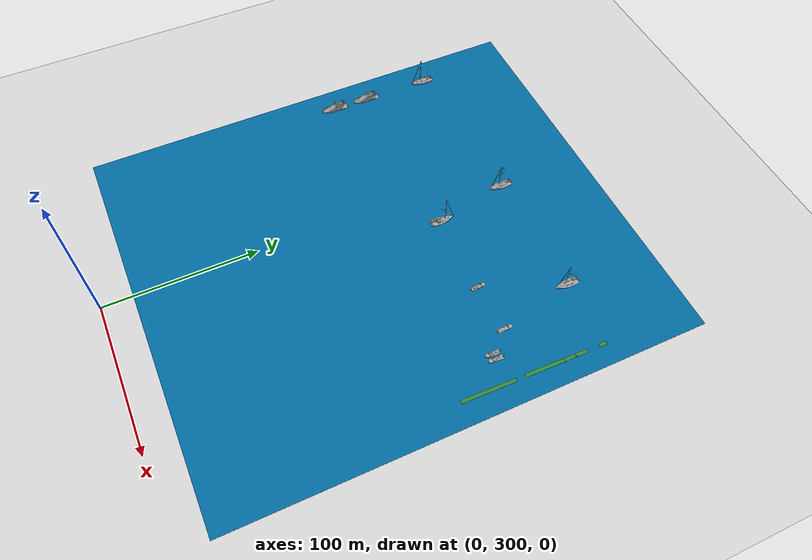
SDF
<sdf version="1.7">
 <world name="default">
  <model name="ground_plane">
   <static>1</static>
   <link name="link">
    <collision name="collision">
     <geometry><plane><normal>0 0 1</normal><size>100 100</size></plane></geometry>
     <surface><friction><ode><mu>100</mu><mu2>50</mu2></ode></friction></surface>
    </collision>
    <visual name="visual">
     <cast_shadows>0</cast_shadows>
     <geometry><plane><normal>0 0 1</normal><size>100 100</size></plane></geometry>
     <material>
      <script><uri>file://media/materials/scripts/gazebo.material</uri><name>Gazebo/Grey</name></script>
     </material>
    </visual>
   </link>
  </model>
  <model name="speedboat_clone_0">
   <static>1</static>
   <link name="link">
    <visual name="visual">
     <pose>0 0 0.2 0 -0 1.57</pose>
     <geometry>
      <mesh>
       <uri>/home/albert/marinero_ws/src/marinero_simulations/models/speedboat/meshes/Speedboat.stl</uri>
       <scale>2 2 2</scale>
      </mesh>
     </geometry>
     <material>
      <script><uri>file://media/materials/scripts/gazebo.material</uri><name>Gazebo/Grey</name></script>
     </material>
    </visual>
    <collision name="collision">
     <pose>0 0 0.2 0 -0 1.57</pose>
     <geometry>
      <mesh>
       <uri>/home/albert/marinero_ws/src/marinero_simulations/models/sailboat_1/meshes/Speedboat.stl</uri>
       <scale>2 2 2</scale>
      </mesh>
     </geometry>
    </collision>
   </link>
   <pose>111.55 515.295 0 0 -0 0</pose>
  </model>
  <model name="speedboat_clone_1">
   <static>1</static>
   <link name="link">
    <visual name="visual">
     <pose>0 0 0.2 0 -0 1.57</pose>
     <geometry>
      <mesh>
       <uri>/home/albert/marinero_ws/src/marinero_simulations/models/speedboat/meshes/Speedboat.stl</uri>
       <scale>2 2 2</scale>
      </mesh>
     </geometry>
     <material>
      <script><uri>file://media/materials/scripts/gazebo.material</uri><name>Gazebo/Grey</name></script>
     </material>
    </visual>
    <collision name="collision">
     <pose>0 0 0.2 0 -0 1.57</pose>
     <geometry>
      <mesh>
       <uri>/home/albert/marinero_ws/src/marinero_simulations/models/sailboat_1/meshes/Speedboat.stl</uri>
       <scale>2 2 2</scale>
      </mesh>
     </geometry>
    </collision>
   </link>
   <pose>79.701 514.282 0 0 -0 0</pose>
  </model>
  <model name="sailboat_1_clone_1_clone_clone_0_clone_clone">
   <static>1</static>
   <link name="link">
    <visual name="visual">
     <pose>0 0 1 0 0 -1.507</pose>
     <geometry>
      <mesh>
       <uri>/home/albert/marinero_ws/src/marinero_simulations/models/sailboat_1/meshes/Sailboat.stl</uri>
       <scale>1.8 1.8 1.8</scale>
      </mesh>
     </geometry>
     <material>
      <script><uri>file://media/materials/scripts/gazebo.material</uri><name>Gazebo/Grey</name></script>
     </material>
    </visual>
    <collision name="collision">
     <pose>0 0 1 0 0 -1.507</pose>
     <geometry>
      <mesh>
       <uri>/home/albert/marinero_ws/src/marinero_simulations/models/sailboat_1/meshes/Sailboat.stl</uri>
       <scale>1.8 1.8 1.8</scale>
      </mesh>
     </geometry>
    </collision>
   </link>
   <pose>-91.8031 559.293 0 0 -0 3.06385</pose>
  </model>
  <model name="sailboat_1_1_clone_clone">
   <static>1</static>
   <link name="link">
    <visual name="visual">
     <pose>0 0 1 0 0 -1.507</pose>
     <geometry>
      <mesh>
       <uri>/home/albert/marinero_ws/src/marinero_simulations/models/sailboat_1/meshes/Sailboat.stl</uri>
       <scale>1.8 1.8 1.8</scale>
      </mesh>
     </geometry>
     <material>
      <script><uri>file://media/materials/scripts/gazebo.material</uri><name>Gazebo/Grey</name></script>
     </material>
    </visual>
    <collision name="collision">
     <pose>0 0 1 0 0 -1.507</pose>
     <geometry>
      <mesh>
       <uri>/home/albert/marinero_ws/src/marinero_simulations/models/sailboat_1/meshes/Sailboat.stl</uri>
       <scale>1.8 1.8 1.8</scale>
      </mesh>
     </geometry>
    </collision>
   </link>
   <pose>26.4036 515.202 0 0 0 -0.077596</pose>
  </model>
  <model name="speedboat_clone_3_clone_6_clone">
   <static>1</static>
   <link name="link">
    <visual name="visual">
     <pose>0 0 0.2 0 -0 1.57</pose>
     <geometry>
      <mesh>
       <uri>/home/albert/marinero_ws/src/marinero_simulations/models/speedboat/meshes/Speedboat.stl</uri>
       <scale>2 2 2</scale>
      </mesh>
     </geometry>
     <material>
      <script><uri>file://media/materials/scripts/gazebo.material</uri><name>Gazebo/Grey</name></script>
     </material>
    </visual>
    <collision name="collision">
     <pose>0 0 0.2 0 -0 1.57</pose>
     <geometry>
      <mesh>
       <uri>/home/albert/marinero_ws/src/marinero_simulations/models/sailboat_1/meshes/Speedboat.stl</uri>
       <scale>2 2 2</scale>
      </mesh>
     </geometry>
    </collision>
   </link>
   <pose>126.875 499.892 0 0 0 -3.12882</pose>
  </model>
  <model name="speedboat_clone_3_clone_6_clone_0">
   <static>1</static>
   <link name="link">
    <visual name="visual">
     <pose>0 0 0.2 0 -0 1.57</pose>
     <geometry>
      <mesh>
       <uri>/home/albert/marinero_ws/src/marinero_simulations/models/speedboat/meshes/Speedboat.stl</uri>
       <scale>2 2 2</scale>
      </mesh>
     </geometry>
     <material>
      <script><uri>file://media/materials/scripts/gazebo.material</uri><name>Gazebo/Grey</name></script>
     </material>
    </visual>
    <collision name="collision">
     <pose>0 0 0.2 0 -0 1.57</pose>
     <geometry>
      <mesh>
       <uri>/home/albert/marinero_ws/src/marinero_simulations/models/sailboat_1/meshes/Speedboat.stl</uri>
       <scale>2 2 2</scale>
      </mesh>
     </geometry>
    </collision>
   </link>
   <pose>123.072 499.787 0 0 0 -3.12882</pose>
  </model>
  <model name="sailboat_1_1_clone_0_clone">
   <static>1</static>
   <link name="link">
    <visual name="visual">
     <pose>0 0 1 0 0 -1.507</pose>
     <geometry>
      <mesh>
       <uri>/home/albert/marinero_ws/src/marinero_simulations/models/sailboat_1/meshes/Sailboat.stl</uri>
       <scale>1.8 1.8 1.8</scale>
      </mesh>
     </geometry>
     <material>
      <script><uri>file://media/materials/scripts/gazebo.material</uri><name>Gazebo/Grey</name></script>
     </material>
    </visual>
    <collision name="collision">
     <pose>0 0 1 0 0 -1.507</pose>
     <geometry>
      <mesh>
       <uri>/home/albert/marinero_ws/src/marinero_simulations/models/sailboat_1/meshes/Sailboat.stl</uri>
       <scale>1.8 1.8 1.8</scale>
      </mesh>
     </geometry>
    </collision>
   </link>
   <pose>16.6274 564.94 0 0 -0 3.08007</pose>
  </model>
  <model name="sailboat_1_1_clone_0_clone_clone_0">
   <static>1</static>
   <link name="link">
    <visual name="visual">
     <pose>0 0 1 0 0 -1.507</pose>
     <geometry>
      <mesh>
       <uri>/home/albert/marinero_ws/src/marinero_simulations/models/sailboat_1/meshes/Sailboat.stl</uri>
       <scale>1.8 1.8 1.8</scale>
      </mesh>
     </geometry>
     <material>
      <script><uri>file://media/materials/scripts/gazebo.material</uri><name>Gazebo/Grey</name></script>
     </material>
    </visual>
    <collision name="collision">
     <pose>0 0 1 0 0 -1.507</pose>
     <geometry>
      <mesh>
       <uri>/home/albert/marinero_ws/src/marinero_simulations/models/sailboat_1/meshes/Sailboat.stl</uri>
       <scale>1.8 1.8 1.8</scale>
      </mesh>
     </geometry>
    </collision>
   </link>
   <pose>100.194 565.074 0 0 -0 3.08007</pose>
  </model>
  <model name="yacht_1_clone">
   <static>1</static>
   <link name="link">
    <visual name="visual">
     <pose>0 0 0.35 0 -0 0</pose>
     <geometry>
      <mesh>
       <uri>/home/albert/marinero_ws/src/marinero_simulations/models/yacht_1/meshes/Yacht_1.stl</uri>
       <scale>2.2 2.2 2.2</scale>
      </mesh>
     </geometry>
     <material>
      <script><uri>file://media/materials/scripts/gazebo.material</uri><name>Gazebo/Grey</name></script>
     </material>
    </visual>
    <collision name="collision">
     <pose>0 0 0.35 0 -0 0</pose>
     <geometry>
      <mesh>
       <uri>/home/albert/marinero_ws/src/marinero_simulations/models/yacht_1/meshes/Yacht_1.stl</uri>
       <scale>2.2 2.2 2.2</scale>
      </mesh>
     </geometry>
    </collision>
   </link>
   <pose>-92.2696 514.663 0 0 -0 0</pose>
  </model>
  <model name="yacht_1_clone_0">
   <static>1</static>
   <link name="link">
    <visual name="visual">
     <pose>0 0 0.35 0 -0 0</pose>
     <geometry>
      <mesh>
       <uri>/home/albert/marinero_ws/src/marinero_simulations/models/yacht_1/meshes/Yacht_1.stl</uri>
       <scale>2.2 2.2 2.2</scale>
      </mesh>
     </geometry>
     <material>
      <script><uri>file://media/materials/scripts/gazebo.material</uri><name>Gazebo/Grey</name></script>
     </material>
    </visual>
    <collision name="collision">
     <pose>0 0 0.35 0 -0 0</pose>
     <geometry>
      <mesh>
       <uri>/home/albert/marinero_ws/src/marinero_simulations/models/yacht_1/meshes/Yacht_1.stl</uri>
       <scale>2.2 2.2 2.2</scale>
      </mesh>
     </geometry>
    </collision>
   </link>
   <pose>-92.4578 490.88 0 0 -0 0</pose>
  </model>
  <model name="grass_plane_M">
   <link name="link">
    <pose>0 0 1.255 0 0 -1.5905</pose>
    <inertial>
     <mass>1</mass>
     <inertia><ixx>1</ixx><ixy>0</ixy><ixz>0</ixz><iyy>1</iyy><iyz>0</iyz><izz>1</izz></inertia>
    </inertial>
    <visual name="visual">
     <cast_shadows>0</cast_shadows>
     <geometry><box><size>25.75 2.25 0.1</size></box></geometry>
     <material>
      <script>
       <uri>/home/albert/marinero_ws/src/marinero_simulations/models/grass_plane_M/materials/scripts</uri>
       <uri>/home/albert/marinero_ws/src/marinero_simulations/models/grass_plane_M/materials/textures/grass.jpg</uri>
       <name>grass_M/texture</name>
      </script>
      <shader type="pixel"><normal_map>__default__</normal_map></shader>
      <ambient>0.2 0.5 0.2 1</ambient>
      <diffuse>0.2 0.5 0.2 1</diffuse>
      <specular>0.2 0.2 0.2 1</specular>
      <emissive>0 0 0 1</emissive>
     </material>
    </visual>
    <collision name="collision">
     <geometry><box><size>25.75 2.25 0.1</size></box></geometry>
     <surface>
      <friction>
       <ode><mu>1</mu><mu2>1</mu2><fdir1>0 0 0</fdir1><slip1>0.001</slip1><slip2>1e-05</slip2></ode>
       <torsional>
        <coefficient>1</coefficient>
        <patch_radius>0</patch_radius>
        <surface_radius>0</surface_radius>
        <use_patch_radius>1</use_patch_radius>
        <ode><slip>0</slip></ode>
       </torsional>
      </friction>
      <bounce><restitution_coefficient>0</restitution_coefficient><threshold>1e+06</threshold></bounce>
      <contact>
       <collide_without_contact>0</collide_without_contact>
       <collide_without_contact_bitmask>1</collide_without_contact_bitmask>
       <collide_bitmask>1</collide_bitmask>
       <ode>
        <soft_cfm>0</soft_cfm>
        <soft_erp>0.2</soft_erp>
        <kp>1e+13</kp>
        <kd>1</kd>
        <max_vel>0.01</max_vel>
        <min_depth>0</min_depth>
       </ode>
       <bullet>
        <split_impulse>1</split_impulse>
        <split_impulse_penetration_threshold>-0.01</split_impulse_penetration_threshold>
        <soft_cfm>0</soft_cfm>
        <soft_erp>0.2</soft_erp>
        <kp>1e+13</kp>
        <kd>1</kd>
       </bullet>
      </contact>
     </surface>
    </collision>
   </link>
   <static>1</static>
   <pose>143.149 523.226 0 0 -0 0</pose>
  </model>
  <model name="grass_plane_0">
   <link name="link">
    <pose>0 0 1.255 0 0 -1.5905</pose>
    <inertial>
     <mass>1</mass>
     <inertia><ixx>1</ixx><ixy>0</ixy><ixz>0</ixz><iyy>1</iyy><iyz>0</iyz><izz>1</izz></inertia>
    </inertial>
    <visual name="visual">
     <cast_shadows>0</cast_shadows>
     <geometry><box><size>35 2.25 0.1</size></box></geometry>
     <material>
      <script>
       <uri>model://grass_plane/materials/scripts</uri>
       <uri>model://grass_plane/materials/textures/grass.jpg</uri>
       <name>grass/texture</name>
      </script>
      <shader type="pixel"><normal_map>__default__</normal_map></shader>
      <ambient>0.2 0.5 0.2 1</ambient>
      <diffuse>0.2 0.5 0.2 1</diffuse>
      <specular>0.2 0.2 0.2 1</specular>
      <emissive>0 0 0 1</emissive>
     </material>
    </visual>
    <collision name="collision">
     <geometry><box><size>35 2.25 0.1</size></box></geometry>
     <surface>
      <friction>
       <ode><mu>1</mu><mu2>1</mu2><fdir1>0 0 0</fdir1><slip1>0.001</slip1><slip2>1e-05</slip2></ode>
       <torsional>
        <coefficient>1</coefficient>
        <patch_radius>0</patch_radius>
        <surface_radius>0</surface_radius>
        <use_patch_radius>1</use_patch_radius>
        <ode><slip>0</slip></ode>
       </torsional>
      </friction>
      <bounce><restitution_coefficient>0</restitution_coefficient><threshold>1e+06</threshold></bounce>
      <contact>
       <collide_without_contact>0</collide_without_contact>
       <collide_without_contact_bitmask>1</collide_without_contact_bitmask>
       <collide_bitmask>1</collide_bitmask>
       <ode>
        <soft_cfm>0</soft_cfm>
        <soft_erp>0.2</soft_erp>
        <kp>1e+13</kp>
        <kd>1</kd>
        <max_vel>0.01</max_vel>
        <min_depth>0</min_depth>
       </ode>
       <bullet>
        <split_impulse>1</split_impulse>
        <split_impulse_penetration_threshold>-0.01</split_impulse_penetration_threshold>
        <soft_cfm>0</soft_cfm>
        <soft_erp>0.2</soft_erp>
        <kp>1e+13</kp>
        <kd>1</kd>
       </bullet>
      </contact>
     </surface>
    </collision>
   </link>
   <static>1</static>
   <pose>142.555 487.276 0 0 -0 0</pose>
  </model>
  <model name="sea_plane_B">
   <link name="link">
    <inertial>
     <mass>5.27875e+06</mass>
     <inertia>
      <ixx>4.66688e+09</ixx>
      <ixy>0</ixy>
      <ixz>0</ixz>
      <iyy>1.84866e+10</iyy>
      <iyz>0</iyz>
      <izz>2.31535e+10</izz>
     </inertia>
    </inertial>
    <visual name="visual">
     <cast_shadows>0</cast_shadows>
     <geometry><box><size>266 305 0.25</size></box></geometry>
     <material>
      <script>
       <uri>model://sea_plane/materials/scripts</uri>
       <uri>model://sea_plane/materials/textures</uri>
       <name>vrc/sea</name>
      </script>
      <shader type="pixel"><normal_map>__default__</normal_map></shader>
      <ambient>0 0.4 0.6 0</ambient>
      <diffuse>0 0.4 0.6 1</diffuse>
      <specular>0.2 0.2 0.2 1</specular>
      <emissive>0 0 0 1</emissive>
     </material>
    </visual>
    <collision name="collision">
     <geometry><box><size>266 305 0.25</size></box></geometry>
     <surface>
      <friction>
       <ode><mu>1</mu><mu2>1</mu2><fdir1>0 0 0</fdir1><slip1>0</slip1><slip2>0</slip2></ode>
       <torsional>
        <coefficient>1</coefficient>
        <patch_radius>0</patch_radius>
        <surface_radius>0</surface_radius>
        <use_patch_radius>1</use_patch_radius>
        <ode><slip>0</slip></ode>
       </torsional>
      </friction>
      <bounce><restitution_coefficient>0</restitution_coefficient><threshold>1e+06</threshold></bounce>
      <contact>
       <collide_without_contact>0</collide_without_contact>
       <collide_without_contact_bitmask>1</collide_without_contact_bitmask>
       <collide_bitmask>1</collide_bitmask>
       <ode>
        <soft_cfm>0</soft_cfm>
        <soft_erp>0.2</soft_erp>
        <kp>1e+13</kp>
        <kd>1</kd>
        <max_vel>0.01</max_vel>
        <min_depth>0</min_depth>
       </ode>
       <bullet>
        <split_impulse>1</split_impulse>
        <split_impulse_penetration_threshold>-0.01</split_impulse_penetration_threshold>
        <soft_cfm>0</soft_cfm>
        <soft_erp>0.2</soft_erp>
        <kp>1e+13</kp>
        <kd>1</kd>
       </bullet>
      </contact>
     </surface>
    </collision>
   </link>
   <static>1</static>
   <pose>23.4896 472.579 0 0 -0 0</pose>
  </model>
  <model name="grass_plane_SM_0_clone">
   <link name="link">
    <pose>0 0 1.255 0 0 -1.5905</pose>
    <inertial>
     <mass>1</mass>
     <inertia><ixx>1</ixx><ixy>0</ixy><ixz>0</ixz><iyy>1</iyy><iyz>0</iyz><izz>1</izz></inertia>
    </inertial>
    <visual name="visual">
     <cast_shadows>0</cast_shadows>
     <geometry><box><size>8 2.25 0.1</size></box></geometry>
     <material>
      <script>
       <uri>/home/albert/marinero_ws/src/marinero_simulations/models/grass_plane_SM/materials/scripts</uri>
       <uri>/home/albert/marinero_ws/src/marinero_simulations/models/grass_plane_SM/materials/textures/grass.jpg</uri>
       <name>grass_SM/texture</name>
      </script>
      <shader type="pixel"><normal_map>__default__</normal_map></shader>
      <ambient>0.2 0.5 0.2 1</ambient>
      <diffuse>0.2 0.5 0.2 1</diffuse>
      <specular>0.2 0.2 0.2 1</specular>
      <emissive>0 0 0 1</emissive>
     </material>
    </visual>
    <collision name="collision">
     <geometry><box><size>8 2.25 0.1</size></box></geometry>
     <surface>
      <friction>
       <ode><mu>1</mu><mu2>1</mu2><fdir1>0 0 0</fdir1><slip1>0.001</slip1><slip2>1e-05</slip2></ode>
       <torsional>
        <coefficient>1</coefficient>
        <patch_radius>0</patch_radius>
        <surface_radius>0</surface_radius>
        <use_patch_radius>1</use_patch_radius>
        <ode><slip>0</slip></ode>
       </torsional>
      </friction>
      <bounce><restitution_coefficient>0</restitution_coefficient><threshold>1e+06</threshold></bounce>
      <contact>
       <collide_without_contact>0</collide_without_contact>
       <collide_without_contact_bitmask>1</collide_without_contact_bitmask>
       <collide_bitmask>1</collide_bitmask>
       <ode>
        <soft_cfm>0</soft_cfm>
        <soft_erp>0.2</soft_erp>
        <kp>1e+13</kp>
        <kd>1</kd>
        <max_vel>0.01</max_vel>
        <min_depth>0</min_depth>
       </ode>
       <bullet>
        <split_impulse>1</split_impulse>
        <split_impulse_penetration_threshold>-0.01</split_impulse_penetration_threshold>
        <soft_cfm>0</soft_cfm>
        <soft_erp>0.2</soft_erp>
        <kp>1e+13</kp>
        <kd>1</kd>
       </bullet>
      </contact>
     </surface>
    </collision>
   </link>
   <static>1</static>
   <pose>143.478 539.912 0 0 -0 0</pose>
  </model>
  <model name="grass_plane_SM_0_clone_0">
   <link name="link">
    <pose>0 0 1.255 0 0 -1.5905</pose>
    <inertial>
     <mass>1</mass>
     <inertia><ixx>1</ixx><ixy>0</ixy><ixz>0</ixz><iyy>1</iyy><iyz>0</iyz><izz>1</izz></inertia>
    </inertial>
    <visual name="visual">
     <cast_shadows>0</cast_shadows>
     <geometry><box><size>8 2.25 0.1</size></box></geometry>
     <material>
      <script>
       <uri>/home/albert/marinero_ws/src/marinero_simulations/models/grass_plane_SM/materials/scripts</uri>
       <uri>/home/albert/marinero_ws/src/marinero_simulations/models/grass_plane_SM/materials/textures/grass.jpg</uri>
       <name>grass_SM/texture</name>
      </script>
      <shader type="pixel"><normal_map>__default__</normal_map></shader>
      <ambient>0.2 0.5 0.2 1</ambient>
      <diffuse>0.2 0.5 0.2 1</diffuse>
      <specular>0.2 0.2 0.2 1</specular>
      <emissive>0 0 0 1</emissive>
     </material>
    </visual>
    <collision name="collision">
     <geometry><box><size>8 2.25 0.1</size></box></geometry>
     <surface>
      <friction>
       <ode><mu>1</mu><mu2>1</mu2><fdir1>0 0 0</fdir1><slip1>0.001</slip1><slip2>1e-05</slip2></ode>
       <torsional>
        <coefficient>1</coefficient>
        <patch_radius>0</patch_radius>
        <surface_radius>0</surface_radius>
        <use_patch_radius>1</use_patch_radius>
        <ode><slip>0</slip></ode>
       </torsional>
      </friction>
      <bounce><restitution_coefficient>0</restitution_coefficient><threshold>1e+06</threshold></bounce>
      <contact>
       <collide_without_contact>0</collide_without_contact>
       <collide_without_contact_bitmask>1</collide_without_contact_bitmask>
       <collide_bitmask>1</collide_bitmask>
       <ode>
        <soft_cfm>0</soft_cfm>
        <soft_erp>0.2</soft_erp>
        <kp>1e+13</kp>
        <kd>1</kd>
        <max_vel>0.01</max_vel>
        <min_depth>0</min_depth>
       </ode>
       <bullet>
        <split_impulse>1</split_impulse>
        <split_impulse_penetration_threshold>-0.01</split_impulse_penetration_threshold>
        <soft_cfm>0</soft_cfm>
        <soft_erp>0.2</soft_erp>
        <kp>1e+13</kp>
        <kd>1</kd>
       </bullet>
      </contact>
     </surface>
    </collision>
   </link>
   <static>1</static>
   <pose>143.625 547.391 0 0 -0 0</pose>
  </model>
  <model name="grass_plane_S_2">
   <link name="link">
    <pose>0 0 1.255 0 0 -1.5905</pose>
    <inertial>
     <mass>1</mass>
     <inertia><ixx>1</ixx><ixy>0</ixy><ixz>0</ixz><iyy>1</iyy><iyz>0</iyz><izz>1</izz></inertia>
    </inertial>
    <visual name="visual">
     <cast_shadows>0</cast_shadows>
     <geometry><box><size>5 2.25 0.1</size></box></geometry>
     <material>
      <script>
       <uri>/home/albert/marinero_ws/src/marinero_simulations/models/grass_plane_S/materials/scripts</uri>
       <uri>/home/albert/marinero_ws/src/marinero_simulations/models/grass_plane_S/materials/textures/grass.jpg</uri>
       <name>grass_V2/texture</name>
      </script>
      <shader type="pixel"><normal_map>__default__</normal_map></shader>
      <ambient>0.2 0.5 0.2 1</ambient>
      <diffuse>0.2 0.5 0.2 1</diffuse>
      <specular>0.2 0.2 0.2 1</specular>
      <emissive>0 0 0 1</emissive>
     </material>
    </visual>
    <collision name="collision">
     <geometry><box><size>5 2.25 0.1</size></box></geometry>
     <surface>
      <friction>
       <ode><mu>1</mu><mu2>1</mu2><fdir1>0 0 0</fdir1><slip1>0.001</slip1><slip2>1e-05</slip2></ode>
       <torsional>
        <coefficient>1</coefficient>
        <patch_radius>0</patch_radius>
        <surface_radius>0</surface_radius>
        <use_patch_radius>1</use_patch_radius>
        <ode><slip>0</slip></ode>
       </torsional>
      </friction>
      <bounce><restitution_coefficient>0</restitution_coefficient><threshold>1e+06</threshold></bounce>
      <contact>
       <collide_without_contact>0</collide_without_contact>
       <collide_without_contact_bitmask>1</collide_without_contact_bitmask>
       <collide_bitmask>1</collide_bitmask>
       <ode>
        <soft_cfm>0</soft_cfm>
        <soft_erp>0.2</soft_erp>
        <kp>1e+13</kp>
        <kd>1</kd>
        <max_vel>0.01</max_vel>
        <min_depth>0</min_depth>
       </ode>
       <bullet>
        <split_impulse>1</split_impulse>
        <split_impulse_penetration_threshold>-0.01</split_impulse_penetration_threshold>
        <soft_cfm>0</soft_cfm>
        <soft_erp>0.2</soft_erp>
        <kp>1e+13</kp>
        <kd>1</kd>
       </bullet>
      </contact>
     </surface>
    </collision>
   </link>
   <static>1</static>
   <pose>143.704 561.696 0 0 -0 0</pose>
  </model>
 </world>
</sdf>
